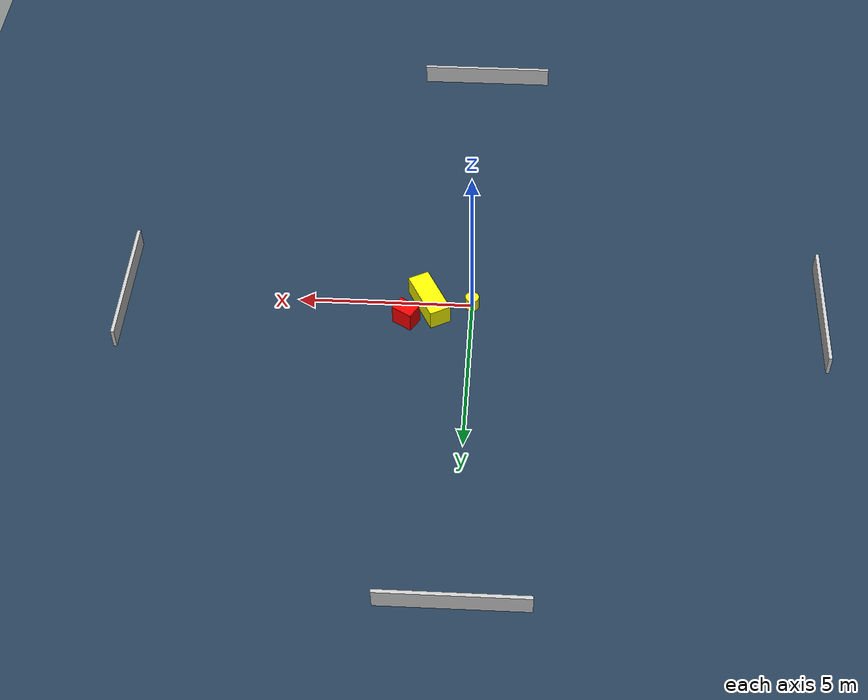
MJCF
<?xml version="1.0" ?>
<mujoco model="generated_environment">
  <option timestep="0.01" integrator="RK4" cone="elliptic"/>
  <default>
    <geom density="1"/>
  </default>
  <asset>
    <texture builtin="gradient" height="3072" name="skybox" rgb1="0.3 0.5 0.7" rgb2="0 0 0" type="skybox" width="512"/>
    <texture builtin="checker" height="300" name="groundplane" rgb1="0.2 0.3 0.4" rgb2="0.1 0.2 0.3" type="2d" width="300"/>
    <material name="groundplane" reflectance="0.2" texrepeat="5 5" texture="groundplane"/>
  </asset>
  <worldbody>
    <light dir="0 0 -1" directional="true" pos="0 0 1.5"/>
    <geom condim="3" friction="0.5 0.005 0.001" material="groundplane" name="floor" pos="0 0 0" size="0 0 0.05" type="plane"/>
    <body name="walls">
      <geom name="wall_1" condim="4" pos="-10.0 0.0 0.3" rgba="0.800000011920929 0.800000011920929 0.800000011920929 1.0" size="0.05 2.0 0.3" type="box"/>
      <geom name="wall_2" condim="4" pos="10.0 0.0 0.3" rgba="0.800000011920929 0.800000011920929 0.800000011920929 1.0" size="0.05 2.0 0.3" type="box"/>
      <geom name="wall_3" condim="4" pos="0.0 -10.0 0.3" rgba="0.800000011920929 0.800000011920929 0.800000011920929 1.0" size="2.0 0.05 0.3" type="box"/>
      <geom name="wall_4" condim="4" pos="0.0 10.0 0.3" rgba="0.800000011920929 0.800000011920929 0.800000011920929 1.0" size="2.0 0.05 0.3" type="box"/>
    </body>
    <body name="robot">
      <joint name="joint_x" type="slide" pos="0 0 0" axis="1 0 0"/>
      <joint name="joint_y" type="slide" pos="0 0 0" axis="0 1 0"/>
      <geom name="robot" type="cylinder" pos="0.0 0.0 0.2" size="0.2 0.2 0.0" mass="5.0" friction="1.0 0.005 0.0001" condim="4" rgba="1.0 1.0 0.0 1.0"/>
    </body>
    <body name="obstacle_1_movable">
      <geom name="obstacle_1_movable" condim="4" pos="1.2321545014249173 0.07469348347059768 0.3" euler="0 0 208.26810508569142" friction="0.0 0.005 0.001" rgba="1.0 1.0 0.0 1.0" size="0.31102902883710987 0.7650567620481799 0.3" type="box" mass="0.1"/>
      <joint type="free"/>
    </body>
    <body name="obstacle_2_static">
      <geom name="obstacle_2_static" condim="4" pos="1.8595129222800177 0.6552764552521149 0.3" euler="0 0 328.65403549710095" friction="0.0 0.005 0.001" rgba="1.0 0.0 0.0 1.0" size="0.31455892380021017 0.22870370904791337 0.3" type="box"/>
    </body>
  </worldbody>
  <actuator>
    <motor name="actuator_x" joint="joint_x" gear="1" ctrlrange="-1 1"/>
    <motor name="actuator_y" joint="joint_y" gear="1" ctrlrange="-1 1"/>
  </actuator>
</mujoco>
